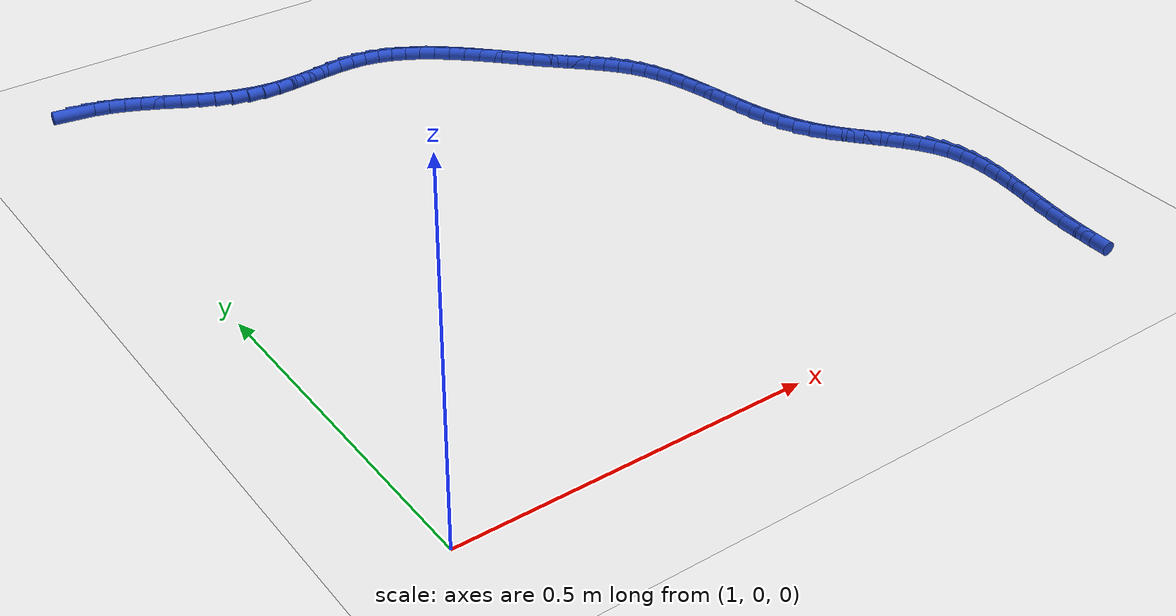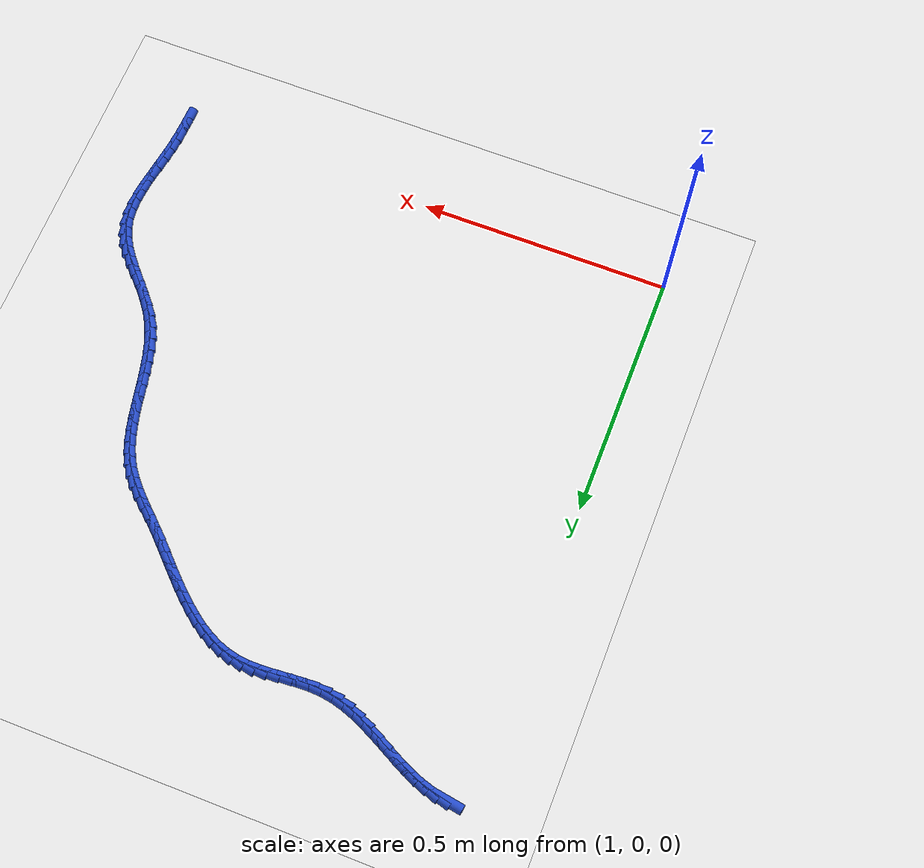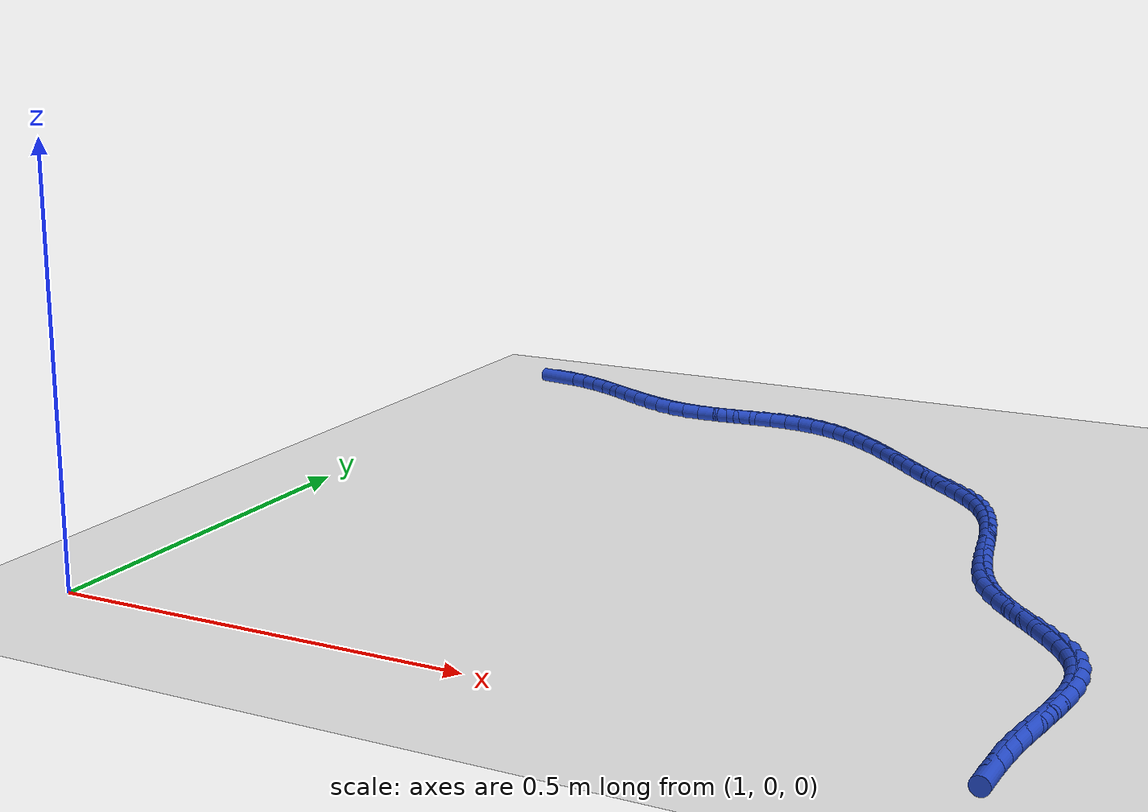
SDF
<sdf version="1.6">
 <world name="default">
  <model name="ground_plane">
   <static>1</static>
   <link name="link">
    <collision name="collision">
     <geometry><plane><normal>0 0 1</normal><size>100 100</size></plane></geometry>
     <surface><friction><ode><mu>100</mu><mu2>50</mu2></ode></friction></surface>
    </collision>
    <visual name="visual">
     <cast_shadows>0</cast_shadows>
     <geometry><plane><normal>0 0 1</normal><size>100 100</size></plane></geometry>
     <material>
      <script><uri>file://media/materials/scripts/gazebo.material</uri><name>Gazebo/WhiteGlow</name></script>
     </material>
    </visual>
   </link>
  </model>
  <model name="line">
   <link name="link_69">
    <pose>1.042864412561768 1.1057361173021407 0.01 0 1.57 -0.15869506629257948</pose>
    <collision name="collision">
     <geometry><cylinder><radius>0.01</radius><length>0.08</length></cylinder></geometry>
    </collision>
    <visual name="visual">
     <material>
      <script><name>Gazebo/Blue</name><uri>file://media/materials/scripts/gazebo.material</uri></script>
     </material>
     <geometry><cylinder><radius>0.01</radius><length>0.08</length></cylinder></geometry>
    </visual>
   </link>
   <link name="link_70">
    <pose>1.064718748201017 1.1022385314326395 0.01 0 1.57 -0.27585993331334396</pose>
    <collision name="collision">
     <geometry><cylinder><radius>0.01</radius><length>0.08</length></cylinder></geometry>
    </collision>
    <visual name="visual">
     <material>
      <script><name>Gazebo/Blue</name><uri>file://media/materials/scripts/gazebo.material</uri></script>
     </material>
     <geometry><cylinder><radius>0.01</radius><length>0.08</length></cylinder></geometry>
    </visual>
   </link>
   <link name="link_71">
    <pose>1.0865711987899338 1.0960526002139346 0.01 0 1.57 -0.3640114104458545</pose>
    <collision name="collision">
     <geometry><cylinder><radius>0.01</radius><length>0.08</length></cylinder></geometry>
    </collision>
    <visual name="visual">
     <material>
      <script><name>Gazebo/Blue</name><uri>file://media/materials/scripts/gazebo.material</uri></script>
     </material>
     <geometry><cylinder><radius>0.01</radius><length>0.08</length></cylinder></geometry>
    </visual>
   </link>
   <link name="link_72">
    <pose>1.1084576170446931 1.0877141036766385 0.01 0 1.57 -0.4256899796307598</pose>
    <collision name="collision">
     <geometry><cylinder><radius>0.01</radius><length>0.08</length></cylinder></geometry>
    </collision>
    <visual name="visual">
     <material>
      <script><name>Gazebo/Blue</name><uri>file://media/materials/scripts/gazebo.material</uri></script>
     </material>
     <geometry><cylinder><radius>0.01</radius><length>0.08</length></cylinder></geometry>
    </visual>
   </link>
   <link name="link_73">
    <pose>1.1304138556814687 1.077758821851364 0.01 0 1.57 -0.4638409086529712</pose>
    <collision name="collision">
     <geometry><cylinder><radius>0.01</radius><length>0.08</length></cylinder></geometry>
    </collision>
    <visual name="visual">
     <material>
      <script><name>Gazebo/Blue</name><uri>file://media/materials/scripts/gazebo.material</uri></script>
     </material>
     <geometry><cylinder><radius>0.01</radius><length>0.08</length></cylinder></geometry>
    </visual>
   </link>
   <link name="link_74">
    <pose>1.1524757674164334 1.0667225347687237 0.01 0 1.57 -0.48078496858470426</pose>
    <collision name="collision">
     <geometry><cylinder><radius>0.01</radius><length>0.08</length></cylinder></geometry>
    </collision>
    <visual name="visual">
     <material>
      <script><name>Gazebo/Blue</name><uri>file://media/materials/scripts/gazebo.material</uri></script>
     </material>
     <geometry><cylinder><radius>0.01</radius><length>0.08</length></cylinder></geometry>
    </visual>
   </link>
   <link name="link_75">
    <pose>1.1746792049657615 1.05514102245933 0.01 0 1.57 -0.47786248320344155</pose>
    <collision name="collision">
     <geometry><cylinder><radius>0.01</radius><length>0.08</length></cylinder></geometry>
    </collision>
    <visual name="visual">
     <material>
      <script><name>Gazebo/Blue</name><uri>file://media/materials/scripts/gazebo.material</uri></script>
     </material>
     <geometry><cylinder><radius>0.01</radius><length>0.08</length></cylinder></geometry>
    </visual>
   </link>
   <link name="link_76">
    <pose>1.197060021045627 1.0435500649537963 0.01 0 1.57 -0.4553850498003765</pose>
    <collision name="collision">
     <geometry><cylinder><radius>0.01</radius><length>0.08</length></cylinder></geometry>
    </collision>
    <visual name="visual">
     <material>
      <script><name>Gazebo/Blue</name><uri>file://media/materials/scripts/gazebo.material</uri></script>
     </material>
     <geometry><cylinder><radius>0.01</radius><length>0.08</length></cylinder></geometry>
    </visual>
   </link>
   <link name="link_77">
    <pose>1.2196540683722024 1.0324854422827339 0.01 0 1.57 -0.4127277858807779</pose>
    <collision name="collision">
     <geometry><cylinder><radius>0.01</radius><length>0.08</length></cylinder></geometry>
    </collision>
    <visual name="visual">
     <material>
      <script><name>Gazebo/Blue</name><uri>file://media/materials/scripts/gazebo.material</uri></script>
     </material>
     <geometry><cylinder><radius>0.01</radius><length>0.08</length></cylinder></geometry>
    </visual>
   </link>
   <link name="link_78">
    <pose>1.242497199661663 1.0224829344767565 0.01 0 1.57 -0.34855737841169315</pose>
    <collision name="collision">
     <geometry><cylinder><radius>0.01</radius><length>0.08</length></cylinder></geometry>
    </collision>
    <visual name="visual">
     <material>
      <script><name>Gazebo/Blue</name><uri>file://media/materials/scripts/gazebo.material</uri></script>
     </material>
     <geometry><cylinder><radius>0.01</radius><length>0.08</length></cylinder></geometry>
    </visual>
   </link>
   <link name="link_79">
    <pose>1.265625267630181 1.0140783215664761 0.01 0 1.57 -0.2613153121712527</pose>
    <collision name="collision">
     <geometry><cylinder><radius>0.01</radius><length>0.08</length></cylinder></geometry>
    </collision>
    <visual name="visual">
     <material>
      <script><name>Gazebo/Blue</name><uri>file://media/materials/scripts/gazebo.material</uri></script>
     </material>
     <geometry><cylinder><radius>0.01</radius><length>0.08</length></cylinder></geometry>
    </visual>
   </link>
   <link name="link_80">
    <pose>1.2890741249939304 1.0078073835825059 0.01 0 1.57 -0.15103770888624535</pose>
    <collision name="collision">
     <geometry><cylinder><radius>0.01</radius><length>0.08</length></cylinder></geometry>
    </collision>
    <visual name="visual">
     <material>
      <script><name>Gazebo/Blue</name><uri>file://media/materials/scripts/gazebo.material</uri></script>
     </material>
     <geometry><cylinder><radius>0.01</radius><length>0.08</length></cylinder></geometry>
    </visual>
   </link>
   <link name="link_81">
    <pose>1.3128765174459731 1.0041847356900666 0.01 0 1.57 -0.043911674486950776</pose>
    <collision name="collision">
     <geometry><cylinder><radius>0.01</radius><length>0.08</length></cylinder></geometry>
    </collision>
    <visual name="visual">
     <material>
      <script><name>Gazebo/Blue</name><uri>file://media/materials/scripts/gazebo.material</uri></script>
     </material>
     <geometry><cylinder><radius>0.01</radius><length>0.08</length></cylinder></geometry>
    </visual>
   </link>
   <link name="link_82">
    <pose>1.336977221600089 1.0031257526707351 0.01 0 1.57 0.03095513097015112</pose>
    <collision name="collision">
     <geometry><cylinder><radius>0.01</radius><length>0.08</length></cylinder></geometry>
    </collision>
    <visual name="visual">
     <material>
      <script><name>Gazebo/Blue</name><uri>file://media/materials/scripts/gazebo.material</uri></script>
     </material>
     <geometry><cylinder><radius>0.01</radius><length>0.08</length></cylinder></geometry>
    </visual>
   </link>
   <link name="link_83">
    <pose>1.3612227612024146 1.0038765163388412 0.01 0 1.57 0.07297118801220037</pose>
    <collision name="collision">
     <geometry><cylinder><radius>0.01</radius><length>0.08</length></cylinder></geometry>
    </collision>
    <visual name="visual">
     <material>
      <script><name>Gazebo/Blue</name><uri>file://media/materials/scripts/gazebo.material</uri></script>
     </material>
     <geometry><cylinder><radius>0.01</radius><length>0.08</length></cylinder></geometry>
    </visual>
   </link>
   <link name="link_84">
    <pose>1.3854544883341076 1.005647879419889 0.01 0 1.57 0.08305357148396872</pose>
    <collision name="collision">
     <geometry><cylinder><radius>0.01</radius><length>0.08</length></cylinder></geometry>
    </collision>
    <visual name="visual">
     <material>
      <script><name>Gazebo/Blue</name><uri>file://media/materials/scripts/gazebo.material</uri></script>
     </material>
     <geometry><cylinder><radius>0.01</radius><length>0.08</length></cylinder></geometry>
    </visual>
   </link>
   <link name="link_85">
    <pose>1.409513755076324 1.0076506946393817 0.01 0 1.57 0.06082803723465566</pose>
    <collision name="collision">
     <geometry><cylinder><radius>0.01</radius><length>0.08</length></cylinder></geometry>
    </collision>
    <visual name="visual">
     <material>
      <script><name>Gazebo/Blue</name><uri>file://media/materials/scripts/gazebo.material</uri></script>
     </material>
     <geometry><cylinder><radius>0.01</radius><length>0.08</length></cylinder></geometry>
    </visual>
   </link>
   <link name="link_86">
    <pose>1.43324191351022 1.0090958147228228 0.01 0 1.57 0.004229081075123144</pose>
    <collision name="collision">
     <geometry><cylinder><radius>0.01</radius><length>0.08</length></cylinder></geometry>
    </collision>
    <visual name="visual">
     <material>
      <script><name>Gazebo/Blue</name><uri>file://media/materials/scripts/gazebo.material</uri></script>
     </material>
     <geometry><cylinder><radius>0.01</radius><length>0.08</length></cylinder></geometry>
    </visual>
   </link>
   <link name="link_87">
    <pose>1.4564803157169517 1.009194092395715 0.01 0 1.57 -0.08995829683425756</pose>
    <collision name="collision">
     <geometry><cylinder><radius>0.01</radius><length>0.08</length></cylinder></geometry>
    </collision>
    <visual name="visual">
     <material>
      <script><name>Gazebo/Blue</name><uri>file://media/materials/scripts/gazebo.material</uri></script>
     </material>
     <geometry><cylinder><radius>0.01</radius><length>0.08</length></cylinder></geometry>
    </visual>
   </link>
   <link name="link_88">
    <pose>1.4790703254640303 1.0071564340455896 0.01 0 1.57 -0.21413230929618274</pose>
    <collision name="collision">
     <geometry><cylinder><radius>0.01</radius><length>0.08</length></cylinder></geometry>
    </collision>
    <visual name="visual">
     <material>
      <script><name>Gazebo/Blue</name><uri>file://media/materials/scripts/gazebo.material</uri></script>
     </material>
     <geometry><cylinder><radius>0.01</radius><length>0.08</length></cylinder></geometry>
    </visual>
   </link>
   <link name="link_89">
    <pose>1.5009002202938937 1.0024091672337463 0.01 0 1.57 -0.33398466267893284</pose>
    <collision name="collision">
     <geometry><cylinder><radius>0.01</radius><length>0.08</length></cylinder></geometry>
    </collision>
    <visual name="visual">
     <material>
      <script><name>Gazebo/Blue</name><uri>file://media/materials/scripts/gazebo.material</uri></script>
     </material>
     <geometry><cylinder><radius>0.01</radius><length>0.08</length></cylinder></geometry>
    </visual>
   </link>
   <link name="link_90">
    <pose>1.5220118473788977 0.9950837887384865 0.01 0 1.57 -0.4397064869559846</pose>
    <collision name="collision">
     <geometry><cylinder><radius>0.01</radius><length>0.08</length></cylinder></geometry>
    </collision>
    <visual name="visual">
     <material>
      <script><name>Gazebo/Blue</name><uri>file://media/materials/scripts/gazebo.material</uri></script>
     </material>
     <geometry><cylinder><radius>0.01</radius><length>0.08</length></cylinder></geometry>
    </visual>
   </link>
   <link name="link_91">
    <pose>1.5424784276201269 0.9854558588989463 0.01 0 1.57 -0.529934359060322</pose>
    <collision name="collision">
     <geometry><cylinder><radius>0.01</radius><length>0.08</length></cylinder></geometry>
    </collision>
    <visual name="visual">
     <material>
      <script><name>Gazebo/Blue</name><uri>file://media/materials/scripts/gazebo.material</uri></script>
     </material>
     <geometry><cylinder><radius>0.01</radius><length>0.08</length></cylinder></geometry>
    </visual>
   </link>
   <link name="link_92">
    <pose>1.5623731819186637 0.9738009380542619 0.01 0 1.57 -0.604786165131742</pose>
    <collision name="collision">
     <geometry><cylinder><radius>0.01</radius><length>0.08</length></cylinder></geometry>
    </collision>
    <visual name="visual">
     <material>
      <script><name>Gazebo/Blue</name><uri>file://media/materials/scripts/gazebo.material</uri></script>
     </material>
     <geometry><cylinder><radius>0.01</radius><length>0.08</length></cylinder></geometry>
    </visual>
   </link>
   <link name="link_93">
    <pose>1.5817693311755936 0.9603945865435699 0.01 0 1.57 -0.6652068004176178</pose>
    <collision name="collision">
     <geometry><cylinder><radius>0.01</radius><length>0.08</length></cylinder></geometry>
    </collision>
    <visual name="visual">
     <material>
      <script><name>Gazebo/Blue</name><uri>file://media/materials/scripts/gazebo.material</uri></script>
     </material>
     <geometry><cylinder><radius>0.01</radius><length>0.08</length></cylinder></geometry>
    </visual>
   </link>
   <link name="link_94">
    <pose>1.6007400962919998 0.9455123647060063 0.01 0 1.57 -0.7124446597083636</pose>
    <collision name="collision">
     <geometry><cylinder><radius>0.01</radius><length>0.08</length></cylinder></geometry>
    </collision>
    <visual name="visual">
     <material>
      <script><name>Gazebo/Blue</name><uri>file://media/materials/scripts/gazebo.material</uri></script>
     </material>
     <geometry><cylinder><radius>0.01</radius><length>0.08</length></cylinder></geometry>
    </visual>
   </link>
   <link name="link_95">
    <pose>1.6193586981689665 0.9294298328807069 0.01 0 1.57 -0.7477217047532781</pose>
    <collision name="collision">
     <geometry><cylinder><radius>0.01</radius><length>0.08</length></cylinder></geometry>
    </collision>
    <visual name="visual">
     <material>
      <script><name>Gazebo/Blue</name><uri>file://media/materials/scripts/gazebo.material</uri></script>
     </material>
     <geometry><cylinder><radius>0.01</radius><length>0.08</length></cylinder></geometry>
    </visual>
   </link>
   <link name="link_96">
    <pose>1.6376983577075774 0.912422551406809 0.01 0 1.57 -0.7720583047464842</pose>
    <collision name="collision">
     <geometry><cylinder><radius>0.01</radius><length>0.08</length></cylinder></geometry>
    </collision>
    <visual name="visual">
     <material>
      <script><name>Gazebo/Blue</name><uri>file://media/materials/scripts/gazebo.material</uri></script>
     </material>
     <geometry><cylinder><radius>0.01</radius><length>0.08</length></cylinder></geometry>
    </visual>
   </link>
   <link name="link_97">
    <pose>1.655832295808917 0.8947660806234482 0.01 0 1.57 -0.7861936382681615</pose>
    <collision name="collision">
     <geometry><cylinder><radius>0.01</radius><length>0.08</length></cylinder></geometry>
    </collision>
    <visual name="visual">
     <material>
      <script><name>Gazebo/Blue</name><uri>file://media/materials/scripts/gazebo.material</uri></script>
     </material>
     <geometry><cylinder><radius>0.01</radius><length>0.08</length></cylinder></geometry>
    </visual>
   </link>
   <link name="link_98">
    <pose>1.6738337333740687 0.8767359808697607 0.01 0 1.57 -0.7905550007475138</pose>
    <collision name="collision">
     <geometry><cylinder><radius>0.01</radius><length>0.08</length></cylinder></geometry>
    </collision>
    <visual name="visual">
     <material>
      <script><name>Gazebo/Blue</name><uri>file://media/materials/scripts/gazebo.material</uri></script>
     </material>
     <geometry><cylinder><radius>0.01</radius><length>0.08</length></cylinder></geometry>
    </visual>
   </link>
   <link name="link_99">
    <pose>1.6917758913041168 0.8586078124848829 0.01 0 1.57 -0.7852471468017094</pose>
    <collision name="collision">
     <geometry><cylinder><radius>0.01</radius><length>0.08</length></cylinder></geometry>
    </collision>
    <visual name="visual">
     <material>
      <script><name>Gazebo/Blue</name><uri>file://media/materials/scripts/gazebo.material</uri></script>
     </material>
     <geometry><cylinder><radius>0.01</radius><length>0.08</length></cylinder></geometry>
    </visual>
   </link>
   <link name="link_100">
    <pose>1.709731990500146 0.8406571358079512 0.01 0 1.57 -0.7700603253848333</pose>
    <collision name="collision">
     <geometry><cylinder><radius>0.01</radius><length>0.08</length></cylinder></geometry>
    </collision>
    <visual name="visual">
     <material>
      <script><name>Gazebo/Blue</name><uri>file://media/materials/scripts/gazebo.material</uri></script>
     </material>
     <geometry><cylinder><radius>0.01</radius><length>0.08</length></cylinder></geometry>
    </visual>
   </link>
   <link name="link_101">
    <pose>1.7277750419900115 0.8231592482347274 0.01 0 1.57 -0.7526460547975733</pose>
    <collision name="collision">
     <geometry><cylinder><radius>0.01</radius><length>0.08</length></cylinder></geometry>
    </collision>
    <visual name="visual">
     <material>
      <script><name>Gazebo/Blue</name><uri>file://media/materials/scripts/gazebo.material</uri></script>
     </material>
     <geometry><cylinder><radius>0.01</radius><length>0.08</length></cylinder></geometry>
    </visual>
   </link>
   <link name="link_102">
    <pose>1.74585096651327 0.8062302198519763 0.01 0 1.57 -0.7551834025213284</pose>
    <collision name="collision">
     <geometry><cylinder><radius>0.01</radius><length>0.08</length></cylinder></geometry>
    </collision>
    <visual name="visual">
     <material>
      <script><name>Gazebo/Blue</name><uri>file://media/materials/scripts/gazebo.material</uri></script>
     </material>
     <geometry><cylinder><radius>0.01</radius><length>0.08</length></cylinder></geometry>
    </visual>
   </link>
   <link name="link_103">
    <pose>1.763563296126628 0.7895571530469598 0.01 0 1.57 -0.7826181183004477</pose>
    <collision name="collision">
     <geometry><cylinder><radius>0.01</radius><length>0.08</length></cylinder></geometry>
    </collision>
    <visual name="visual">
     <material>
      <script><name>Gazebo/Blue</name><uri>file://media/materials/scripts/gazebo.material</uri></script>
     </material>
     <geometry><cylinder><radius>0.01</radius><length>0.08</length></cylinder></geometry>
    </visual>
   </link>
   <link name="link_104">
    <pose>1.7804584865967175 0.772755641170351 0.01 0 1.57 -0.8366560313960634</pose>
    <collision name="collision">
     <geometry><cylinder><radius>0.01</radius><length>0.08</length></cylinder></geometry>
    </collision>
    <visual name="visual">
     <material>
      <script><name>Gazebo/Blue</name><uri>file://media/materials/scripts/gazebo.material</uri></script>
     </material>
     <geometry><cylinder><radius>0.01</radius><length>0.08</length></cylinder></geometry>
    </visual>
   </link>
   <link name="link_105">
    <pose>1.7960829936901692 0.7554412775728239 0.01 0 1.57 -0.918860022311709</pose>
    <collision name="collision">
     <geometry><cylinder><radius>0.01</radius><length>0.08</length></cylinder></geometry>
    </collision>
    <visual name="visual">
     <material>
      <script><name>Gazebo/Blue</name><uri>file://media/materials/scripts/gazebo.material</uri></script>
     </material>
     <geometry><cylinder><radius>0.01</radius><length>0.08</length></cylinder></geometry>
    </visual>
   </link>
   <link name="link_106">
    <pose>1.809983273173617 0.7372296556050523 0.01 0 1.57 -1.0255124260906572</pose>
    <collision name="collision">
     <geometry><cylinder><radius>0.01</radius><length>0.08</length></cylinder></geometry>
    </collision>
    <visual name="visual">
     <material>
      <script><name>Gazebo/Blue</name><uri>file://media/materials/scripts/gazebo.material</uri></script>
     </material>
     <geometry><cylinder><radius>0.01</radius><length>0.08</length></cylinder></geometry>
    </visual>
   </link>
   <link name="link_107">
    <pose>1.8217774106545859 0.7177877548904616 0.01 0 1.57 -1.1271211570850472</pose>
    <collision name="collision">
     <geometry><cylinder><radius>0.01</radius><length>0.08</length></cylinder></geometry>
    </collision>
    <visual name="visual">
     <material>
      <script><name>Gazebo/Blue</name><uri>file://media/materials/scripts/gazebo.material</uri></script>
     </material>
     <geometry><cylinder><radius>0.01</radius><length>0.08</length></cylinder></geometry>
    </visual>
   </link>
   <link name="link_108">
    <pose>1.8315885255871234 0.6971448594588869 0.01 0 1.57 -1.2101518884715905</pose>
    <collision name="collision">
     <geometry><cylinder><radius>0.01</radius><length>0.08</length></cylinder></geometry>
    </collision>
    <visual name="visual">
     <material>
      <script><name>Gazebo/Blue</name><uri>file://media/materials/scripts/gazebo.material</uri></script>
     </material>
     <geometry><cylinder><radius>0.01</radius><length>0.08</length></cylinder></geometry>
    </visual>
   </link>
   <link name="link_109">
    <pose>1.839756904013755 0.6754860456944233 0.01 0 1.57 -1.2744491797732402</pose>
    <collision name="collision">
     <geometry><cylinder><radius>0.01</radius><length>0.08</length></cylinder></geometry>
    </collision>
    <visual name="visual">
     <material>
      <script><name>Gazebo/Blue</name><uri>file://media/materials/scripts/gazebo.material</uri></script>
     </material>
     <geometry><cylinder><radius>0.01</radius><length>0.08</length></cylinder></geometry>
    </visual>
   </link>
   <link name="link_110">
    <pose>1.8466236741124185 0.6529969941176471 0.01 0 1.57 -1.3208243355655331</pose>
    <collision name="collision">
     <geometry><cylinder><radius>0.01</radius><length>0.08</length></cylinder></geometry>
    </collision>
    <visual name="visual">
     <material>
      <script><name>Gazebo/Blue</name><uri>file://media/materials/scripts/gazebo.material</uri></script>
     </material>
     <geometry><cylinder><radius>0.01</radius><length>0.08</length></cylinder></geometry>
    </visual>
   </link>
   <link name="link_111">
    <pose>1.8525299640610524 0.6298633852491347 0.01 0 1.57 -1.350344254184254</pose>
    <collision name="collision">
     <geometry><cylinder><radius>0.01</radius><length>0.08</length></cylinder></geometry>
    </collision>
    <visual name="visual">
     <material>
      <script><name>Gazebo/Blue</name><uri>file://media/materials/scripts/gazebo.material</uri></script>
     </material>
     <geometry><cylinder><radius>0.01</radius><length>0.08</length></cylinder></geometry>
    </visual>
   </link>
   <link name="link_112">
    <pose>1.8578169020375956 0.6062708996094623 0.01 0 1.57 -1.363927700873666</pose>
    <collision name="collision">
     <geometry><cylinder><radius>0.01</radius><length>0.08</length></cylinder></geometry>
    </collision>
    <visual name="visual">
     <material>
      <script><name>Gazebo/Blue</name><uri>file://media/materials/scripts/gazebo.material</uri></script>
     </material>
     <geometry><cylinder><radius>0.01</radius><length>0.08</length></cylinder></geometry>
    </visual>
   </link>
   <link name="link_113">
    <pose>1.862825616219987 0.5824052177192065 0.01 0 1.57 -1.3621474599988181</pose>
    <collision name="collision">
     <geometry><cylinder><radius>0.01</radius><length>0.08</length></cylinder></geometry>
    </collision>
    <visual name="visual">
     <material>
      <script><name>Gazebo/Blue</name><uri>file://media/materials/scripts/gazebo.material</uri></script>
     </material>
     <geometry><cylinder><radius>0.01</radius><length>0.08</length></cylinder></geometry>
    </visual>
   </link>
   <link name="link_114">
    <pose>1.8678972347861644 0.5584520200989441 0.01 0 1.57 -1.345166189682592</pose>
    <collision name="collision">
     <geometry><cylinder><radius>0.01</radius><length>0.08</length></cylinder></geometry>
    </collision>
    <visual name="visual">
     <material>
      <script><name>Gazebo/Blue</name><uri>file://media/materials/scripts/gazebo.material</uri></script>
     </material>
     <geometry><cylinder><radius>0.01</radius><length>0.08</length></cylinder></geometry>
    </visual>
   </link>
   <link name="link_115">
    <pose>1.8733728859140666 0.5345969872692513 0.01 0 1.57 -1.312763804766064</pose>
    <collision name="collision">
     <geometry><cylinder><radius>0.01</radius><length>0.08</length></cylinder></geometry>
    </collision>
    <visual name="visual">
     <material>
      <script><name>Gazebo/Blue</name><uri>file://media/materials/scripts/gazebo.material</uri></script>
     </material>
     <geometry><cylinder><radius>0.01</radius><length>0.08</length></cylinder></geometry>
    </visual>
   </link>
   <link name="link_116">
    <pose>1.8795936977816323 0.5110257997507046 0.01 0 1.57 -1.264451513357937</pose>
    <collision name="collision">
     <geometry><cylinder><radius>0.01</radius><length>0.08</length></cylinder></geometry>
    </collision>
    <visual name="visual">
     <material>
      <script><name>Gazebo/Blue</name><uri>file://media/materials/scripts/gazebo.material</uri></script>
     </material>
     <geometry><cylinder><radius>0.01</radius><length>0.08</length></cylinder></geometry>
    </visual>
   </link>
   <link name="link_117">
    <pose>1.8869007985668005 0.48792413806388 0.01 0 1.57 -1.1996983761309745</pose>
    <collision name="collision">
     <geometry><cylinder><radius>0.01</radius><length>0.08</length></cylinder></geometry>
    </collision>
    <visual name="visual">
     <material>
      <script><name>Gazebo/Blue</name><uri>file://media/materials/scripts/gazebo.material</uri></script>
     </material>
     <geometry><cylinder><radius>0.01</radius><length>0.08</length></cylinder></geometry>
    </visual>
   </link>
   <link name="link_118">
    <pose>1.8956353164475082 0.4654776827293546 0.01 0 1.57 -1.1183080996521129</pose>
    <collision name="collision">
     <geometry><cylinder><radius>0.01</radius><length>0.08</length></cylinder></geometry>
    </collision>
    <visual name="visual">
     <material>
      <script><name>Gazebo/Blue</name><uri>file://media/materials/scripts/gazebo.material</uri></script>
     </material>
     <geometry><cylinder><radius>0.01</radius><length>0.08</length></cylinder></geometry>
    </visual>
   </link>
   <link name="link_119">
    <pose>1.9061383796016962 0.4438721142677049 0.01 0 1.57 -1.0220395143766163</pose>
    <collision name="collision">
     <geometry><cylinder><radius>0.01</radius><length>0.08</length></cylinder></geometry>
    </collision>
    <visual name="visual">
     <material>
      <script><name>Gazebo/Blue</name><uri>file://media/materials/scripts/gazebo.material</uri></script>
     </material>
     <geometry><cylinder><radius>0.01</radius><length>0.08</length></cylinder></geometry>
    </visual>
   </link>
   <link name="link_120">
    <pose>1.918726947556655 0.4232822385922105 0.01 0 1.57 -0.9345582869541952</pose>
    <collision name="collision">
     <geometry><cylinder><radius>0.01</radius><length>0.08</length></cylinder></geometry>
    </collision>
    <visual name="visual">
     <material>
      <script><name>Gazebo/Blue</name><uri>file://media/materials/scripts/gazebo.material</uri></script>
     </material>
     <geometry><cylinder><radius>0.01</radius><length>0.08</length></cylinder></geometry>
    </visual>
   </link>
   <link name="link_121">
    <pose>1.9332222769465734 0.4036598216799518 0.01 0 1.57 -0.8760952224976624</pose>
    <collision name="collision">
     <geometry><cylinder><radius>0.01</radius><length>0.08</length></cylinder></geometry>
    </collision>
    <visual name="visual">
     <material>
      <script><name>Gazebo/Blue</name><uri>file://media/materials/scripts/gazebo.material</uri></script>
     </material>
     <geometry><cylinder><radius>0.01</radius><length>0.08</length></cylinder></geometry>
    </visual>
   </link>
   <link name="link_122">
    <pose>1.9489812129688902 0.38474766906282254 0.01 0 1.57 -0.8457821763687019</pose>
    <collision name="collision">
     <geometry><cylinder><radius>0.01</radius><length>0.08</length></cylinder></geometry>
    </collision>
    <visual name="visual">
     <material>
      <script><name>Gazebo/Blue</name><uri>file://media/materials/scripts/gazebo.material</uri></script>
     </material>
     <geometry><cylinder><radius>0.01</radius><length>0.08</length></cylinder></geometry>
    </visual>
   </link>
   <link name="link_123">
    <pose>1.965342698804266 0.3662805313173493 0.01 0 1.57 -0.8427037623218684</pose>
    <collision name="collision">
     <geometry><cylinder><radius>0.01</radius><length>0.08</length></cylinder></geometry>
    </collision>
    <visual name="visual">
     <material>
      <script><name>Gazebo/Blue</name><uri>file://media/materials/scripts/gazebo.material</uri></script>
     </material>
     <geometry><cylinder><radius>0.01</radius><length>0.08</length></cylinder></geometry>
    </visual>
   </link>
   <link name="link_124">
    <pose>1.9816456776333629 0.34799315902005784 0.01 0 1.57 -0.8673621654932047</pose>
    <collision name="collision">
     <geometry><cylinder><radius>0.01</radius><length>0.08</length></cylinder></geometry>
    </collision>
    <visual name="visual">
     <material>
      <script><name>Gazebo/Blue</name><uri>file://media/materials/scripts/gazebo.material</uri></script>
     </material>
     <geometry><cylinder><radius>0.01</radius><length>0.08</length></cylinder></geometry>
    </visual>
   </link>
   <link name="link_125">
    <pose>1.9972290926368426 0.3296203027474743 0.01 0 1.57 -0.9218451147136373</pose>
    <collision name="collision">
     <geometry><cylinder><radius>0.01</radius><length>0.08</length></cylinder></geometry>
    </collision>
    <visual name="visual">
     <material>
      <script><name>Gazebo/Blue</name><uri>file://media/materials/scripts/gazebo.material</uri></script>
     </material>
     <geometry><cylinder><radius>0.01</radius><length>0.08</length></cylinder></geometry>
    </visual>
   </link>
   <link name="link_126">
    <pose>2.011431886995367 0.3108967130761243 0.01 0 1.57 -1.0094545037115732</pose>
    <collision name="collision">
     <geometry><cylinder><radius>0.01</radius><length>0.08</length></cylinder></geometry>
    </collision>
    <visual name="visual">
     <material>
      <script><name>Gazebo/Blue</name><uri>file://media/materials/scripts/gazebo.material</uri></script>
     </material>
     <geometry><cylinder><radius>0.01</radius><length>0.08</length></cylinder></geometry>
    </visual>
   </link>
   <link name="link_127">
    <pose>2.023593003889598 0.2915571405825347 0.01 0 1.57 -1.1332758317718483</pose>
    <collision name="collision">
     <geometry><cylinder><radius>0.01</radius><length>0.08</length></cylinder></geometry>
    </collision>
    <visual name="visual">
     <material>
      <script><name>Gazebo/Blue</name><uri>file://media/materials/scripts/gazebo.material</uri></script>
     </material>
     <geometry><cylinder><radius>0.01</radius><length>0.08</length></cylinder></geometry>
    </visual>
   </link>
   <link name="link_128">
    <pose>2.033051386500197 0.27133633584323125 0.01 0 1.57 -1.2857705144092018</pose>
    <collision name="collision">
     <geometry><cylinder><radius>0.01</radius><length>0.08</length></cylinder></geometry>
    </collision>
    <visual name="visual">
     <material>
      <script><name>Gazebo/Blue</name><uri>file://media/materials/scripts/gazebo.material</uri></script>
     </material>
     <geometry><cylinder><radius>0.01</radius><length>0.08</length></cylinder></geometry>
    </visual>
   </link>
   <link name="link_129">
    <pose>2.039295783211045 0.2500246657903183 0.01 0 1.57 -1.424296681547785</pose>
    <collision name="collision">
     <geometry><cylinder><radius>0.01</radius><length>0.08</length></cylinder></geometry>
    </collision>
    <visual name="visual">
     <material>
      <script><name>Gazebo/Blue</name><uri>file://media/materials/scripts/gazebo.material</uri></script>
     </material>
     <geometry><cylinder><radius>0.01</radius><length>0.08</length></cylinder></geometry>
    </visual>
   </link>
   <link name="link_130">
    <pose>2.0425899082567733 0.22770020950067127 0.01 0 1.57 -1.5338019485685828</pose>
    <collision name="collision">
     <geometry><cylinder><radius>0.01</radius><length>0.08</length></cylinder></geometry>
    </collision>
    <visual name="visual">
     <material>
      <script><name>Gazebo/Blue</name><uri>file://media/materials/scripts/gazebo.material</uri></script>
     </material>
     <geometry><cylinder><radius>0.01</radius><length>0.08</length></cylinder></geometry>
    </visual>
   </link>
   <link name="link_131">
    <pose>2.0434473261746415 0.20453380493385978 0.01 0 1.57 1.526123217456961</pose>
    <collision name="collision">
     <geometry><cylinder><radius>0.01</radius><length>0.08</length></cylinder></geometry>
    </collision>
    <visual name="visual">
     <material>
      <script><name>Gazebo/Blue</name><uri>file://media/materials/scripts/gazebo.material</uri></script>
     </material>
     <geometry><cylinder><radius>0.01</radius><length>0.08</length></cylinder></geometry>
    </visual>
   </link>
   <link name="link_132">
    <pose>2.042381723322141 0.1806963352761694 0.01 0 1.57 1.469453001643639</pose>
    <collision name="collision">
     <geometry><cylinder><radius>0.01</radius><length>0.08</length></cylinder></geometry>
    </collision>
    <visual name="visual">
     <material>
      <script><name>Gazebo/Blue</name><uri>file://media/materials/scripts/gazebo.material</uri></script>
     </material>
     <geometry><cylinder><radius>0.01</radius><length>0.08</length></cylinder></geometry>
    </visual>
   </link>
   <link name="link_133">
    <pose>2.0399067860567635 0.1563586837138845 0.01 0 1.57 1.4349935939428162</pose>
    <collision name="collision">
     <geometry><cylinder><radius>0.01</radius><length>0.08</length></cylinder></geometry>
    </collision>
    <visual name="visual">
     <material>
      <script><name>Gazebo/Blue</name><uri>file://media/materials/scripts/gazebo.material</uri></script>
     </material>
     <geometry><cylinder><radius>0.01</radius><length>0.08</length></cylinder></geometry>
    </visual>
   </link>
   <link name="link_134">
    <pose>2.036536200735997 0.13169173343328958 0.01 0 1.57 1.4207742752826902</pose>
    <collision name="collision">
     <geometry><cylinder><radius>0.01</radius><length>0.08</length></cylinder></geometry>
    </collision>
    <visual name="visual">
     <material>
      <script><name>Gazebo/Blue</name><uri>file://media/materials/scripts/gazebo.material</uri></script>
     </material>
     <geometry><cylinder><radius>0.01</radius><length>0.08</length></cylinder></geometry>
    </visual>
   </link>
   <link name="link_135">
    <pose>2.0327836537173334 0.10686636762066909 0.01 0 1.57 1.425894064267808</pose>
    <collision name="collision">
     <geometry><cylinder><radius>0.01</radius><length>0.08</length></cylinder></geometry>
    </collision>
    <visual name="visual">
     <material>
      <script><name>Gazebo/Blue</name><uri>file://media/materials/scripts/gazebo.material</uri></script>
     </material>
     <geometry><cylinder><radius>0.01</radius><length>0.08</length></cylinder></geometry>
    </visual>
   </link>
   <link name="link_136">
    <pose>2.029162831358264 0.08205346946230846 0.01 0 1.57 1.4501921333182088</pose>
    <collision name="collision">
     <geometry><cylinder><radius>0.01</radius><length>0.08</length></cylinder></geometry>
    </collision>
    <visual name="visual">
     <material>
      <script><name>Gazebo/Blue</name><uri>file://media/materials/scripts/gazebo.material</uri></script>
     </material>
     <geometry><cylinder><radius>0.01</radius><length>0.08</length></cylinder></geometry>
    </visual>
   </link>
   <link name="link_137">
    <pose>2.026177523110563 0.05742066053595313 0.01 0 1.57 1.4838822624055927</pose>
    <collision name="collision">
     <geometry><cylinder><radius>0.01</radius><length>0.08</length></cylinder></geometry>
    </collision>
    <visual name="visual">
     <material>
      <script><name>Gazebo/Blue</name><uri>file://media/materials/scripts/gazebo.material</uri></script>
     </material>
     <geometry><cylinder><radius>0.01</radius><length>0.08</length></cylinder></geometry>
    </visual>
   </link>
   <link name="link_138">
    <pose>2.0240534918980915 0.03304393643809201 0.01 0 1.57 1.515099369891614</pose>
    <collision name="collision">
     <geometry><cylinder><radius>0.01</radius><length>0.08</length></cylinder></geometry>
    </collision>
    <visual name="visual">
     <material>
      <script><name>Gazebo/Blue</name><uri>file://media/materials/scripts/gazebo.material</uri></script>
     </material>
     <geometry><cylinder><radius>0.01</radius><length>0.08</length></cylinder></geometry>
    </visual>
   </link>
   <link name="link_139">
    <pose>2.0227072088280034 0.00889736304500785 0.01 0 1.57 1.542899573669666</pose>
    <collision name="collision">
     <geometry><cylinder><radius>0.01</radius><length>0.08</length></cylinder></geometry>
    </collision>
    <visual name="visual">
     <material>
      <script><name>Gazebo/Blue</name><uri>file://media/materials/scripts/gazebo.material</uri></script>
     </material>
     <geometry><cylinder><radius>0.01</radius><length>0.08</length></cylinder></geometry>
    </visual>
   </link>
  </model>
 </world>
</sdf>
